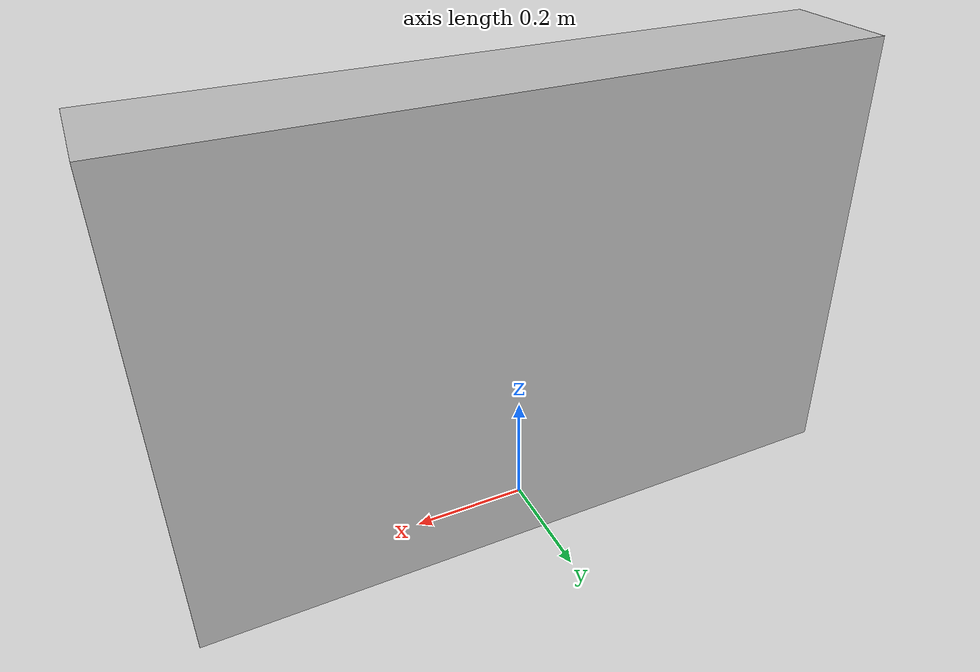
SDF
<?xml version="1.0"?>
<sdf version="1.6">
  <model name="robotics_testlabs/block120" type="wall">
    <static>true</static>
    <link name="1_link">
      <collision name="1_col">
        <geometry>
          <box>
            <size>1.2 0.2 0.8</size>
          </box>
        </geometry>
      </collision>
      <visual name="1_vis">
        <geometry>
          <box>
            <size>1.2 0.2 0.8</size>
          </box>
        </geometry>
      </visual>
      <pose>0.0 0.0 0.4 0 0 0</pose>
    </link>
  </model>
</sdf>
